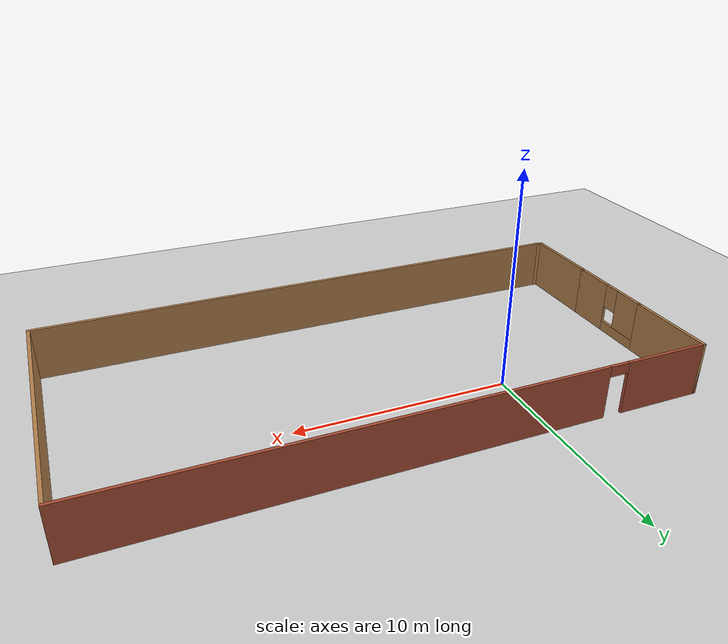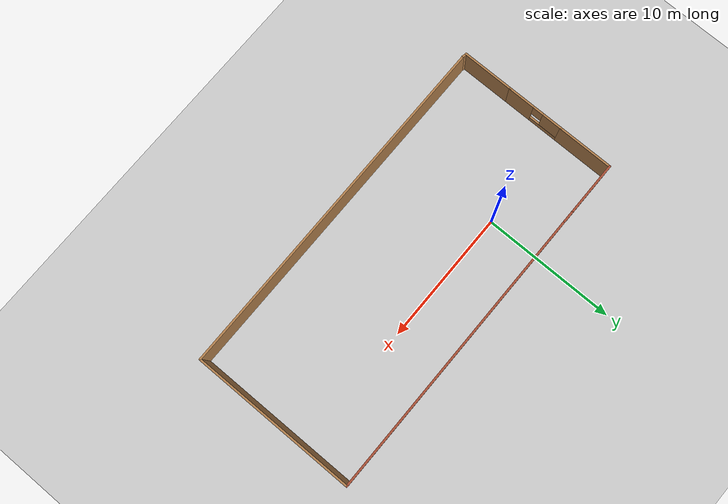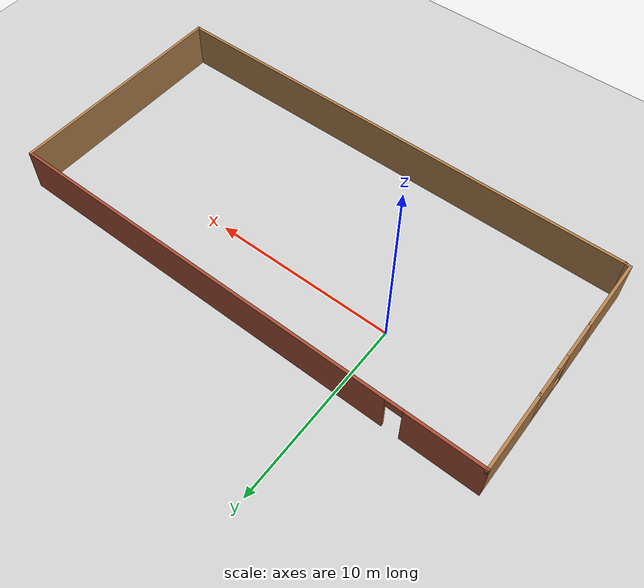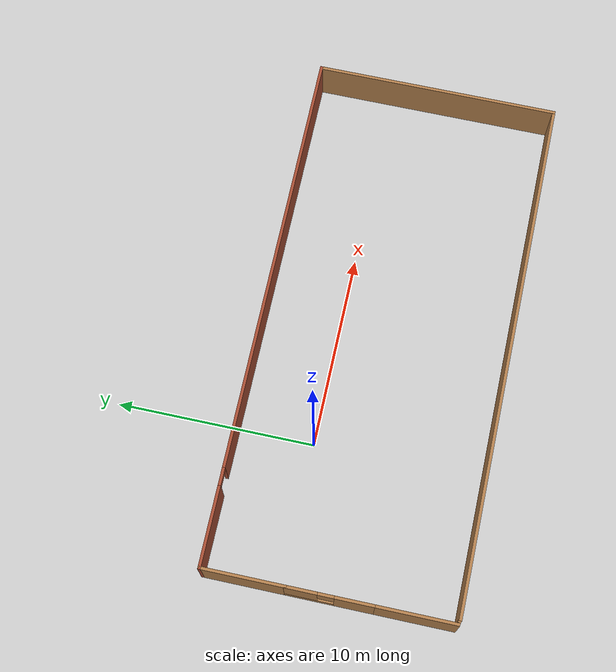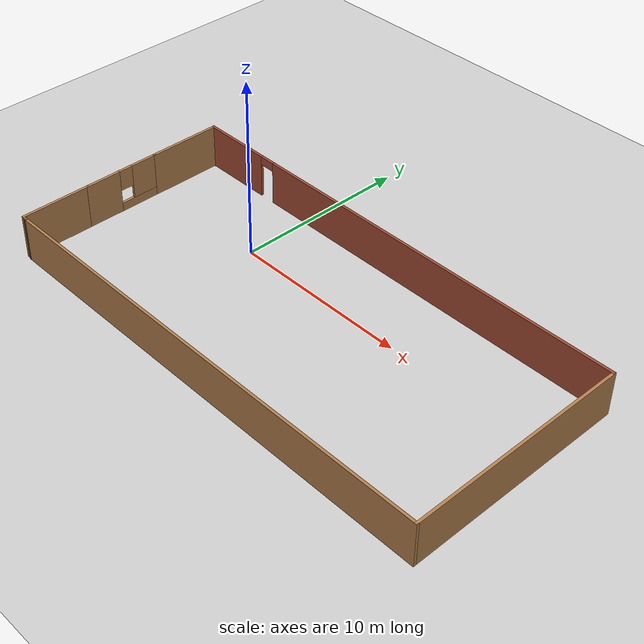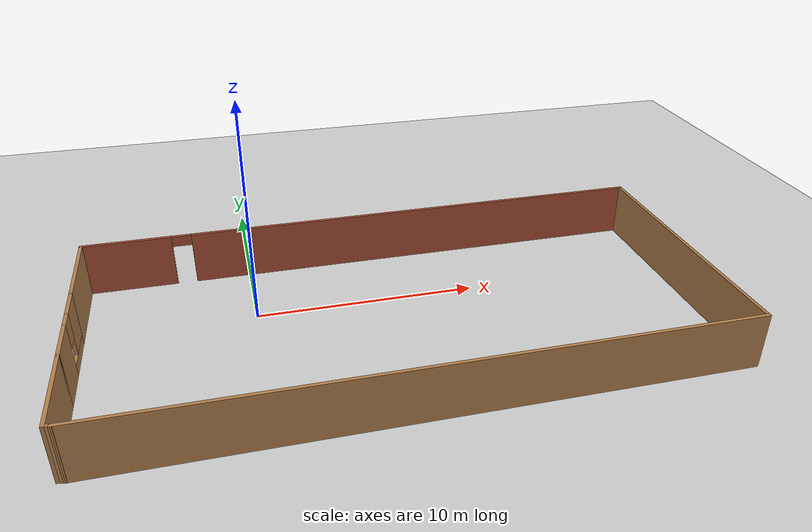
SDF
<sdf version="1.7">
 <world name="default">
  <light name="sun" type="directional">
   <pose>0 0 10 0 -0 0</pose>
   <diffuse>0.8 0.8 0.8 1</diffuse>
   <specular>0.2 0.2 0.2 1</specular>
   <attenuation>
    <range>1000</range>
    <constant>0.9</constant>
    <linear>0.01</linear>
    <quadratic>0.001</quadratic>
   </attenuation>
   <direction>-0.5 0.1 -0.9</direction>
   <spot><inner_angle>0</inner_angle><outer_angle>0</outer_angle><falloff>0</falloff></spot>
  </light>
  <model name="ground_plane">
   <static>1</static>
   <link name="link">
    <collision name="collision">
     <geometry><plane><normal>0 0 1</normal><size>100 100</size></plane></geometry>
     <surface><friction><ode><mu>100</mu><mu2>50</mu2></ode></friction></surface>
    </collision>
    <visual name="visual">
     <cast_shadows>0</cast_shadows>
     <geometry><plane><normal>0 0 1</normal><size>100 100</size></plane></geometry>
     <material>
      <script><uri>file://media/materials/scripts/gazebo.material</uri><name>Gazebo/Grey</name></script>
     </material>
    </visual>
   </link>
  </model>
  <gravity>0 0 -9.8</gravity>
  <magnetic_field>6e-06 2.3e-05 -4.2e-05</magnetic_field>
  <atmosphere type="adiabatic"/>
  <physics type="ode">
   <max_step_size>0.001</max_step_size>
   <real_time_factor>1</real_time_factor>
   <real_time_update_rate>1000</real_time_update_rate>
  </physics>
  <scene><ambient>0.4 0.4 0.4 1</ambient><background>0.7 0.7 0.7 1</background><shadows>1</shadows></scene>
  <audio><device>default</device></audio>
  <spherical_coordinates>
   <surface_model>EARTH_WGS84</surface_model>
   <latitude_deg>0</latitude_deg>
   <longitude_deg>0</longitude_deg>
   <elevation>0</elevation>
   <heading_deg>0</heading_deg>
  </spherical_coordinates>
  <model name="test">
   <pose>5.995 -2.34343 0 0 -0 0</pose>
   <link name="Wall_1">
    <pose>-13.425 -0.091573 0 0 -0 1.5708</pose>
    <visual name="Wall_1_Visual_0">
     <pose>-1.20658 0 1.25 0 -0 0</pose>
     <geometry><box><size>2.08685 0.15 2.5</size></box></geometry>
     <material>
      <script><uri>file://media/materials/scripts/gazebo.material</uri><name>Gazebo/Wood</name></script>
      <ambient>1 1 1 1</ambient>
     </material>
     <meta><layer>0</layer></meta>
    </visual>
    <collision name="Wall_1_Collision_0">
     <geometry><box><size>2.08685 0.15 2.5</size></box></geometry>
     <pose>-1.20658 0 1.25 0 -0 0</pose>
    </collision>
    <visual name="Wall_1_Visual_1">
     <pose>1.04342 0 0.25 0 -0 0</pose>
     <geometry><box><size>2.41315 0.15 0.5</size></box></geometry>
     <material>
      <script><uri>file://media/materials/scripts/gazebo.material</uri><name>Gazebo/Wood</name></script>
      <ambient>1 1 1 1</ambient>
     </material>
     <meta><layer>0</layer></meta>
    </visual>
    <collision name="Wall_1_Collision_1">
     <geometry><box><size>2.41315 0.15 0.5</size></box></geometry>
     <pose>1.04342 0 0.25 0 -0 0</pose>
    </collision>
    <visual name="Wall_1_Visual_2">
     <pose>1.44342 0 1.5 0 -0 0</pose>
     <geometry><box><size>1.61315 0.15 2</size></box></geometry>
     <material>
      <script><uri>file://media/materials/scripts/gazebo.material</uri><name>Gazebo/Wood</name></script>
      <ambient>1 1 1 1</ambient>
     </material>
     <meta><layer>0</layer></meta>
    </visual>
    <collision name="Wall_1_Collision_2">
     <geometry><box><size>1.61315 0.15 2</size></box></geometry>
     <pose>1.44342 0 1.5 0 -0 0</pose>
    </collision>
    <visual name="Wall_1_Visual_3">
     <pose>0.236848 0 1.9 0 -0 0</pose>
     <geometry><box><size>0.8 0.15 1.2</size></box></geometry>
     <material>
      <script><uri>file://media/materials/scripts/gazebo.material</uri><name>Gazebo/Wood</name></script>
      <ambient>1 1 1 1</ambient>
     </material>
     <meta><layer>0</layer></meta>
    </visual>
    <collision name="Wall_1_Collision_3">
     <geometry><box><size>0.8 0.15 1.2</size></box></geometry>
     <pose>0.236848 0 1.9 0 -0 0</pose>
    </collision>
   </link>
   <link name="Wall_3">
    <collision name="Wall_3_Collision">
     <geometry><box><size>4.25 0.15 2.5</size></box></geometry>
     <pose>0 0 1.25 0 -0 0</pose>
    </collision>
    <visual name="Wall_3_Visual">
     <pose>0 0 1.25 0 -0 0</pose>
     <geometry><box><size>4.25 0.15 2.5</size></box></geometry>
     <material>
      <script><uri>file://media/materials/scripts/gazebo.material</uri><name>Gazebo/Wood</name></script>
      <ambient>1 1 1 1</ambient>
     </material>
     <meta><layer>0</layer></meta>
    </visual>
    <pose>-13.425 4.13343 0 0 -0 1.5708</pose>
   </link>
   <link name="Wall_4">
    <pose>-0 6.18343 0 0 -0 0</pose>
    <visual name="Wall_4_Visual_0">
     <pose>-11.4665 0 1.25 0 -0 0</pose>
     <geometry><box><size>4.06707 0.15 2.5</size></box></geometry>
     <material>
      <script><uri>file://media/materials/scripts/gazebo.material</uri><name>Gazebo/Bricks</name></script>
      <ambient>1 1 1 1</ambient>
     </material>
     <meta><layer>0</layer></meta>
    </visual>
    <collision name="Wall_4_Collision_0">
     <geometry><box><size>4.06707 0.15 2.5</size></box></geometry>
     <pose>-11.4665 0 1.25 0 -0 0</pose>
    </collision>
    <visual name="Wall_4_Visual_1">
     <pose>2.48354 0 1.25 0 -0 0</pose>
     <geometry><box><size>22.0329 0.15 2.5</size></box></geometry>
     <material>
      <script><uri>file://media/materials/scripts/gazebo.material</uri><name>Gazebo/Bricks</name></script>
      <ambient>1 1 1 1</ambient>
     </material>
     <meta><layer>0</layer></meta>
    </visual>
    <collision name="Wall_4_Collision_1">
     <geometry><box><size>22.0329 0.15 2.5</size></box></geometry>
     <pose>2.48354 0 1.25 0 -0 0</pose>
    </collision>
    <visual name="Wall_4_Visual_2">
     <pose>-8.98293 0 2.25 0 -0 0</pose>
     <geometry><box><size>0.9 0.15 0.5</size></box></geometry>
     <material>
      <script><uri>file://media/materials/scripts/gazebo.material</uri><name>Gazebo/Bricks</name></script>
      <ambient>1 1 1 1</ambient>
     </material>
     <meta><layer>0</layer></meta>
    </visual>
    <collision name="Wall_4_Collision_2">
     <geometry><box><size>0.9 0.15 0.5</size></box></geometry>
     <pose>-8.98293 0 2.25 0 -0 0</pose>
    </collision>
   </link>
   <link name="Wall_5">
    <collision name="Wall_5_Collision">
     <geometry><box><size>12.5 0.15 2.5</size></box></geometry>
     <pose>0 0 1.25 0 -0 0</pose>
    </collision>
    <visual name="Wall_5_Visual">
     <pose>0 0 1.25 0 -0 0</pose>
     <geometry><box><size>12.5 0.15 2.5</size></box></geometry>
     <material>
      <script><uri>file://media/materials/scripts/gazebo.material</uri><name>Gazebo/Wood</name></script>
      <ambient>1 1 1 1</ambient>
     </material>
     <meta><layer>0</layer></meta>
    </visual>
    <pose>13.425 0.008427 0 0 -0 -1.5708</pose>
   </link>
   <link name="Wall_6">
    <collision name="Wall_6_Collision">
     <geometry><box><size>26.75 0.15 2.5</size></box></geometry>
     <pose>0 0 1.25 0 -0 0</pose>
    </collision>
    <visual name="Wall_6_Visual">
     <pose>0 0 1.25 0 -0 0</pose>
     <geometry><box><size>26.75 0.15 2.5</size></box></geometry>
     <material>
      <script><uri>file://media/materials/scripts/gazebo.material</uri><name>Gazebo/Wood</name></script>
      <ambient>1 1 1 1</ambient>
     </material>
     <meta><layer>0</layer></meta>
    </visual>
    <pose>0.125 -6.16657 0 0 -0 3.14159</pose>
   </link>
   <link name="Wall_7">
    <collision name="Wall_7_Collision">
     <geometry><box><size>0.25 0.15 2.5</size></box></geometry>
     <pose>0 0 1.25 0 -0 0</pose>
    </collision>
    <visual name="Wall_7_Visual">
     <pose>0 0 1.25 0 -0 0</pose>
     <geometry><box><size>0.25 0.15 2.5</size></box></geometry>
     <material>
      <script><uri>file://media/materials/scripts/gazebo.material</uri><name>Gazebo/Wood</name></script>
      <ambient>1 1 1 1</ambient>
     </material>
     <meta><layer>0</layer></meta>
    </visual>
    <pose>-13.2233 -6.15363 0 0 -0 2.87979</pose>
   </link>
   <link name="Wall_9">
    <collision name="Wall_9_Collision">
     <geometry><box><size>4 0.15 2.5</size></box></geometry>
     <pose>0 0 1.25 0 -0 0</pose>
    </collision>
    <visual name="Wall_9_Visual">
     <pose>0 0 1.25 0 -0 0</pose>
     <geometry><box><size>4 0.15 2.5</size></box></geometry>
     <material>
      <script><uri>file://media/materials/scripts/gazebo.material</uri><name>Gazebo/Wood</name></script>
      <ambient>1 1 1 1</ambient>
     </material>
     <meta><layer>0</layer></meta>
    </visual>
    <pose>-13.425 -4.19157 0 0 -0 -1.5708</pose>
   </link>
   <static>1</static>
  </model>
 </world>
</sdf>
